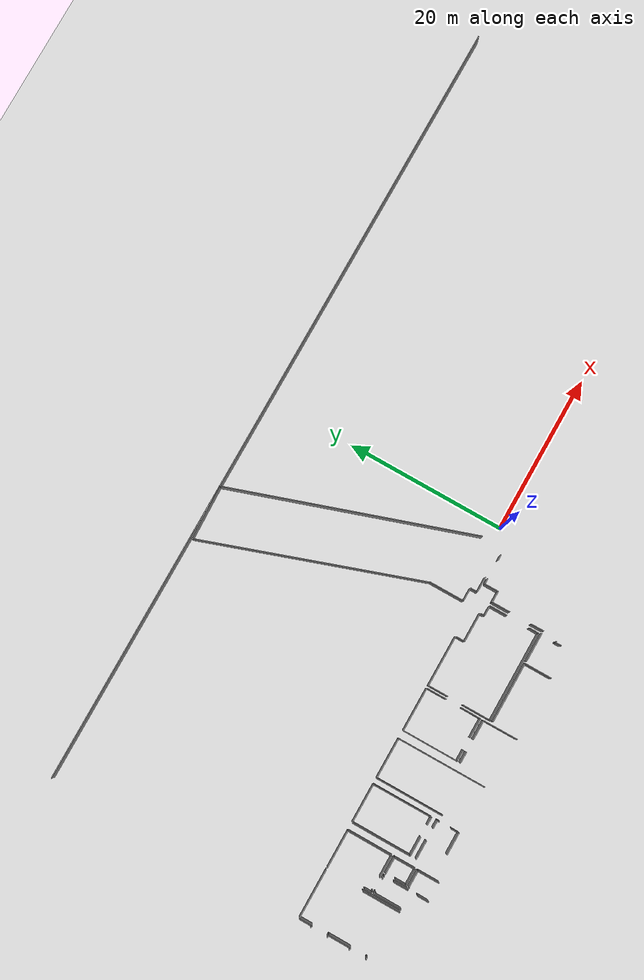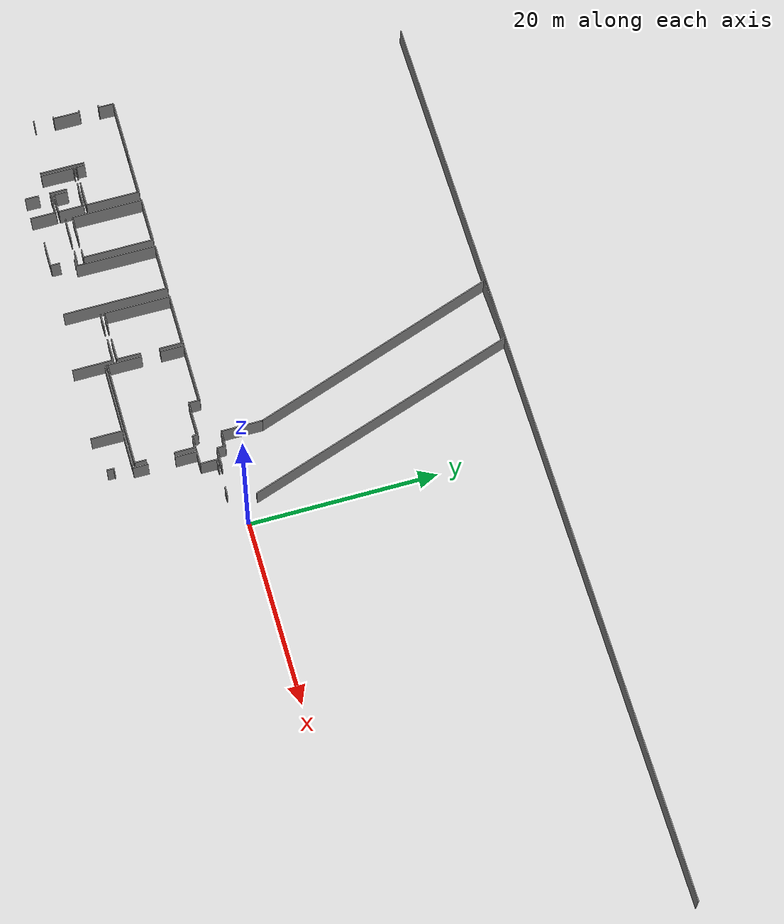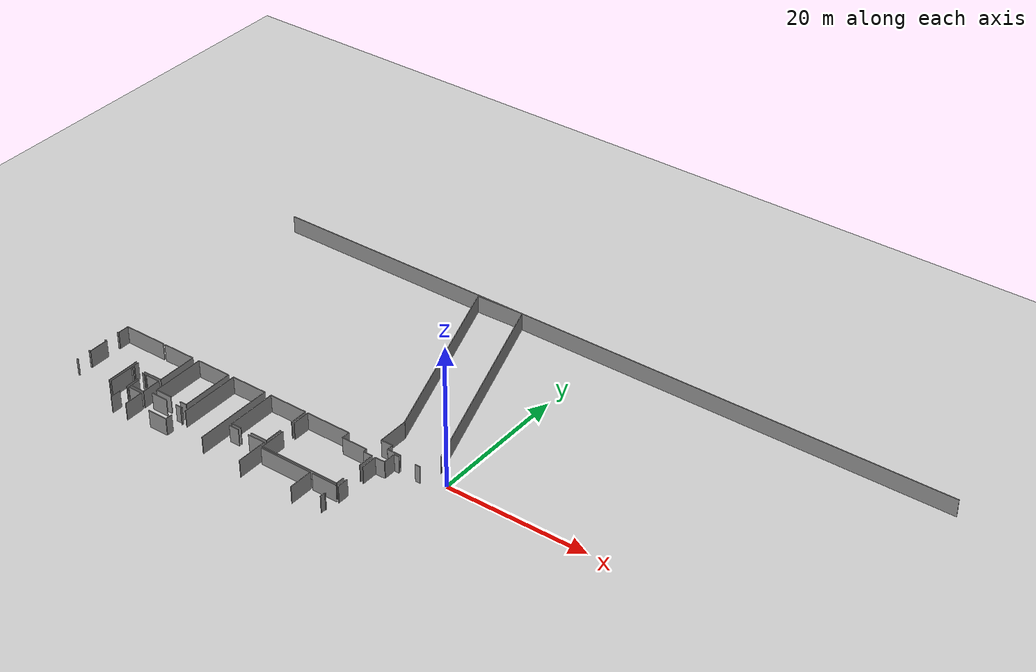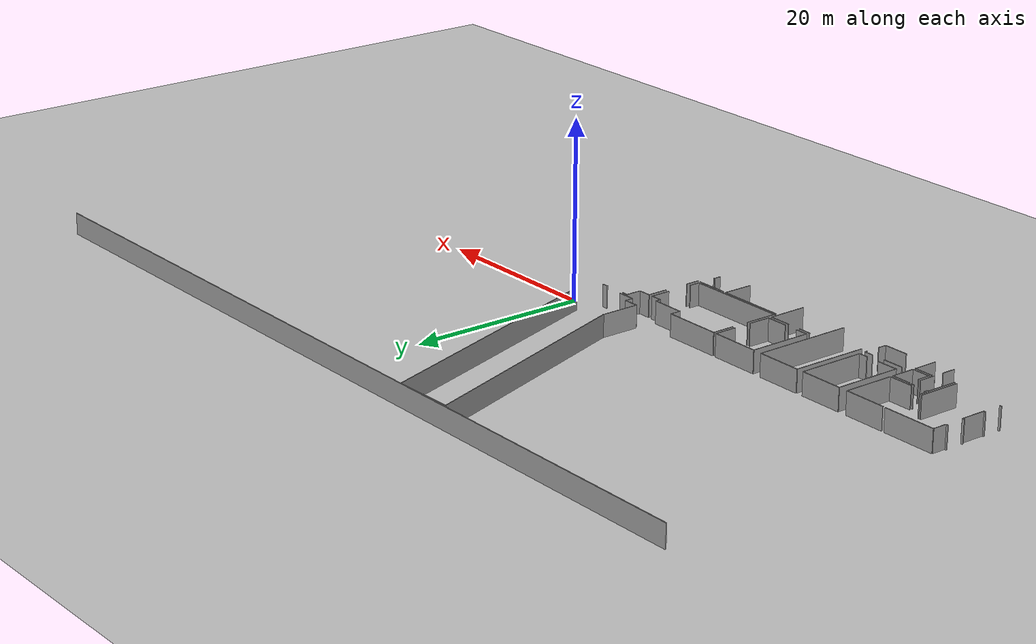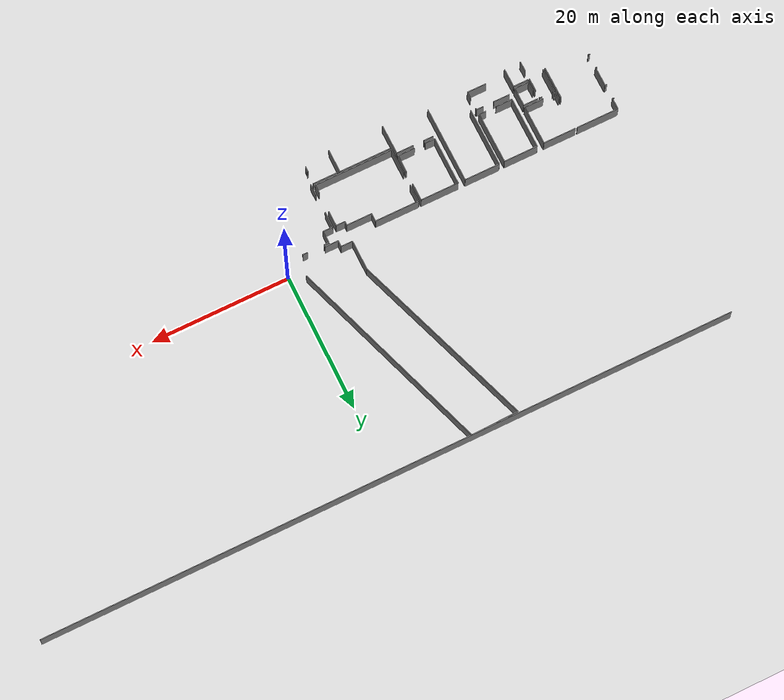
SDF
<sdf version="1.6">
 <world name="default">
  <model name="ground_plane">
   <static>1</static>
   <link name="link">
    <collision name="collision">
     <geometry><plane><normal>0 0 1</normal><size>100 100</size></plane></geometry>
     <surface><friction><ode><mu>100</mu><mu2>50</mu2></ode></friction></surface>
    </collision>
    <visual name="visual">
     <cast_shadows>0</cast_shadows>
     <geometry><plane><normal>0 0 1</normal><size>100 100</size></plane></geometry>
     <material>
      <script><uri>file://media/materials/scripts/gazebo.material</uri><name>Gazebo/Grey</name></script>
     </material>
    </visual>
   </link>
  </model>
  <model name="0510032260_A_40_1_102">
   <static>1</static>
   <link name="Wall_2">
    <collision name="Wall_2_Collision">
     <geometry><box><size>0.251178788783 0.1 2.5</size></box></geometry>
     <pose>0.125589394391 0 1.25 0 0 0</pose>
    </collision>
    <visual name="Wall_2_Visual">
     <pose>0.125589394391 0 1.25 0 0 0</pose>
     <geometry><box><size>0.251178788783 0.1 2.5</size></box></geometry>
     <material>
      <script><uri>file://media/materials/scripts/gazebo.material</uri><name>Gazebo/Grey</name></script>
      <ambient>1 1 1 1</ambient>
     </material>
    </visual>
    <pose>0.284813138973 -40.9323695717 0 0 0 3.14159265359</pose>
   </link>
   <link name="Wall_3">
    <collision name="Wall_3_Collision">
     <geometry><box><size>0.238486581163 0.1 2.5</size></box></geometry>
     <pose>0.119243290582 0 1.25 0 0 0</pose>
    </collision>
    <visual name="Wall_3_Visual">
     <pose>0.119243290582 0 1.25 0 0 0</pose>
     <geometry><box><size>0.238486581163 0.1 2.5</size></box></geometry>
     <material>
      <script><uri>file://media/materials/scripts/gazebo.material</uri><name>Gazebo/Grey</name></script>
      <ambient>1 1 1 1</ambient>
     </material>
    </visual>
    <pose>0.0336343501907 -38.808963237 0 0 0 0.0</pose>
   </link>
   <link name="Wall_4">
    <collision name="Wall_4_Collision">
     <geometry><box><size>2.84368911707 0.1 2.5</size></box></geometry>
     <pose>1.42184455853 0 1.25 0 0 0</pose>
    </collision>
    <visual name="Wall_4_Visual">
     <pose>1.42184455853 0 1.25 0 0 0</pose>
     <geometry><box><size>2.84368911707 0.1 2.5</size></box></geometry>
     <material>
      <script><uri>file://media/materials/scripts/gazebo.material</uri><name>Gazebo/Grey</name></script>
      <ambient>1 1 1 1</ambient>
     </material>
    </visual>
    <pose>0.272120931354 -38.808963237 0 0 0 1.57079632679</pose>
   </link>
   <link name="Wall_5">
    <collision name="Wall_5_Collision">
     <geometry><box><size>0.257651814668 0.1 2.5</size></box></geometry>
     <pose>0.128825907334 0 1.25 0 0 0</pose>
    </collision>
    <visual name="Wall_5_Visual">
     <pose>0.128825907334 0 1.25 0 0 0</pose>
     <geometry><box><size>0.257651814668 0.1 2.5</size></box></geometry>
     <material>
      <script><uri>file://media/materials/scripts/gazebo.material</uri><name>Gazebo/Grey</name></script>
      <ambient>1 1 1 1</ambient>
     </material>
    </visual>
    <pose>0.272120931354 -35.96527412 0 0 0 3.14159265359</pose>
   </link>
   <link name="Wall_6">
    <collision name="Wall_6_Collision">
     <geometry><box><size>0.248132658954 0.1 2.5</size></box></geometry>
     <pose>0.124066329477 0 1.25 0 0 0</pose>
    </collision>
    <visual name="Wall_6_Visual">
     <pose>0.124066329477 0 1.25 0 0 0</pose>
     <geometry><box><size>0.248132658954 0.1 2.5</size></box></geometry>
     <material>
      <script><uri>file://media/materials/scripts/gazebo.material</uri><name>Gazebo/Grey</name></script>
      <ambient>1 1 1 1</ambient>
     </material>
    </visual>
    <pose>0.0144691166858 -33.8371716685 0 0 0 0.0</pose>
   </link>
   <link name="Wall_7">
    <collision name="Wall_7_Collision">
     <geometry><box><size>1.63666017249 0.1 2.5</size></box></geometry>
     <pose>0.818330086244 0 1.25 0 0 0</pose>
    </collision>
    <visual name="Wall_7_Visual">
     <pose>0.818330086244 0 1.25 0 0 0</pose>
     <geometry><box><size>1.63666017249 0.1 2.5</size></box></geometry>
     <material>
      <script><uri>file://media/materials/scripts/gazebo.material</uri><name>Gazebo/Grey</name></script>
      <ambient>1 1 1 1</ambient>
     </material>
    </visual>
    <pose>0.26260177564 -33.8371716685 0 0 0 1.57079632679</pose>
   </link>
   <link name="Wall_8">
    <collision name="Wall_8_Collision">
     <geometry><box><size>6.15368994206 0.1 2.5</size></box></geometry>
     <pose>3.07684497103 0 1.25 0 0 0</pose>
    </collision>
    <visual name="Wall_8_Visual">
     <pose>3.07684497103 0 1.25 0 0 0</pose>
     <geometry><box><size>6.15368994206 0.1 2.5</size></box></geometry>
     <material>
      <script><uri>file://media/materials/scripts/gazebo.material</uri><name>Gazebo/Grey</name></script>
      <ambient>1 1 1 1</ambient>
     </material>
    </visual>
    <pose>0.26260177564 -32.200511496 0 0 0 0.0</pose>
   </link>
   <link name="Wall_9">
    <collision name="Wall_9_Collision">
     <geometry><box><size>4.78039307767 0.1 2.5</size></box></geometry>
     <pose>2.39019653883 0 1.25 0 0 0</pose>
    </collision>
    <visual name="Wall_9_Visual">
     <pose>2.39019653883 0 1.25 0 0 0</pose>
     <geometry><box><size>4.78039307767 0.1 2.5</size></box></geometry>
     <material>
      <script><uri>file://media/materials/scripts/gazebo.material</uri><name>Gazebo/Grey</name></script>
      <ambient>1 1 1 1</ambient>
     </material>
    </visual>
    <pose>6.4162917177 -36.9579316778 0 0 0 -1.57079632679</pose>
   </link>
   <link name="Wall_11">
    <collision name="Wall_11_Collision">
     <geometry><box><size>2.78124345558 0.1 2.5</size></box></geometry>
     <pose>1.39062172779 0 1.25 0 0 0</pose>
    </collision>
    <visual name="Wall_11_Visual">
     <pose>1.39062172779 0 1.25 0 0 0</pose>
     <geometry><box><size>2.78124345558 0.1 2.5</size></box></geometry>
     <material>
      <script><uri>file://media/materials/scripts/gazebo.material</uri><name>Gazebo/Grey</name></script>
      <ambient>1 1 1 1</ambient>
     </material>
    </visual>
    <pose>11.4279368182 -37.9172087297 0 0 0 3.14159265359</pose>
   </link>
   <link name="Wall_12">
    <collision name="Wall_12_Collision">
     <geometry><box><size>0.275420905335 0.1 2.5</size></box></geometry>
     <pose>0.137710452668 0 1.25 0 0 0</pose>
    </collision>
    <visual name="Wall_12_Visual">
     <pose>0.137710452668 0 1.25 0 0 0</pose>
     <geometry><box><size>0.275420905335 0.1 2.5</size></box></geometry>
     <material>
      <script><uri>file://media/materials/scripts/gazebo.material</uri><name>Gazebo/Grey</name></script>
      <ambient>1 1 1 1</ambient>
     </material>
    </visual>
    <pose>6.97132195688 -37.9172087297 0 0 0 3.14159265359</pose>
   </link>
   <link name="Wall_13">
    <collision name="Wall_13_Collision">
     <geometry><box><size>0.944173324787 0.1 2.5</size></box></geometry>
     <pose>0.472086662394 0 1.25 0 0 0</pose>
    </collision>
    <visual name="Wall_13_Visual">
     <pose>0.472086662394 0 1.25 0 0 0</pose>
     <geometry><box><size>0.944173324787 0.1 2.5</size></box></geometry>
     <material>
      <script><uri>file://media/materials/scripts/gazebo.material</uri><name>Gazebo/Grey</name></script>
      <ambient>1 1 1 1</ambient>
     </material>
    </visual>
    <pose>6.69590105155 -37.9172087297 0 0 0 1.57079632679</pose>
   </link>
   <link name="Wall_14">
    <collision name="Wall_14_Collision">
     <geometry><box><size>4.74015877952 0.1 2.5</size></box></geometry>
     <pose>2.37007938976 0 1.25 0 0 0</pose>
    </collision>
    <visual name="Wall_14_Visual">
     <pose>2.37007938976 0 1.25 0 0 0</pose>
     <geometry><box><size>4.74015877952 0.1 2.5</size></box></geometry>
     <material>
      <script><uri>file://media/materials/scripts/gazebo.material</uri><name>Gazebo/Grey</name></script>
      <ambient>1 1 1 1</ambient>
     </material>
    </visual>
    <pose>6.69590105155 -32.2078729764 0 0 0 0.0</pose>
   </link>
   <link name="Wall_15">
    <collision name="Wall_15_Collision">
     <geometry><box><size>5.70934153186 0.1 2.5</size></box></geometry>
     <pose>2.85467076593 0 1.25 0 0 0</pose>
    </collision>
    <visual name="Wall_15_Visual">
     <pose>2.85467076593 0 1.25 0 0 0</pose>
     <geometry><box><size>5.70934153186 0.1 2.5</size></box></geometry>
     <material>
      <script><uri>file://media/materials/scripts/gazebo.material</uri><name>Gazebo/Grey</name></script>
      <ambient>1 1 1 1</ambient>
     </material>
    </visual>
    <pose>11.4360598311 -32.2078729764 0 0 0 -1.57221908554</pose>
   </link>
   <link name="Wall_19">
    <collision name="Wall_19_Collision">
     <geometry><box><size>3.49771857568 0.1 2.5</size></box></geometry>
     <pose>1.74885928784 0 1.25 0 0 0</pose>
    </collision>
    <visual name="Wall_19_Visual">
     <pose>1.74885928784 0 1.25 0 0 0</pose>
     <geometry><box><size>3.49771857568 0.1 2.5</size></box></geometry>
     <material>
      <script><uri>file://media/materials/scripts/gazebo.material</uri><name>Gazebo/Grey</name></script>
      <ambient>1 1 1 1</ambient>
     </material>
    </visual>
    <pose>6.72623542776 -41.7286786777 0 0 0 1.57079632679</pose>
   </link>
   <link name="Wall_20">
    <collision name="Wall_20_Collision">
     <geometry><box><size>0.302328385488 0.1 2.5</size></box></geometry>
     <pose>0.151164192744 0 1.25 0 0 0</pose>
    </collision>
    <visual name="Wall_20_Visual">
     <pose>0.151164192744 0 1.25 0 0 0</pose>
     <geometry><box><size>0.302328385488 0.1 2.5</size></box></geometry>
     <material>
      <script><uri>file://media/materials/scripts/gazebo.material</uri><name>Gazebo/Grey</name></script>
      <ambient>1 1 1 1</ambient>
     </material>
    </visual>
    <pose>6.72623542776 -38.230960102 0 0 0 0.0</pose>
   </link>
   <link name="Wall_21">
    <collision name="Wall_21_Collision">
     <geometry><box><size>0.367185566421 0.1 2.5</size></box></geometry>
     <pose>0.183592783211 0 1.25 0 0 0</pose>
    </collision>
    <visual name="Wall_21_Visual">
     <pose>0.183592783211 0 1.25 0 0 0</pose>
     <geometry><box><size>0.367185566421 0.1 2.5</size></box></geometry>
     <material>
      <script><uri>file://media/materials/scripts/gazebo.material</uri><name>Gazebo/Grey</name></script>
      <ambient>1 1 1 1</ambient>
     </material>
    </visual>
    <pose>8.64872411583 -38.230960102 0 0 0 0.0</pose>
   </link>
   <link name="Wall_22">
    <collision name="Wall_22_Collision">
     <geometry><box><size>0.0856724014291 0.1 2.5</size></box></geometry>
     <pose>0.0428362007146 0 1.25 0 0 0</pose>
    </collision>
    <visual name="Wall_22_Visual">
     <pose>0.0428362007146 0 1.25 0 0 0</pose>
     <geometry><box><size>0.0856724014291 0.1 2.5</size></box></geometry>
     <material>
      <script><uri>file://media/materials/scripts/gazebo.material</uri><name>Gazebo/Grey</name></script>
      <ambient>1 1 1 1</ambient>
     </material>
    </visual>
    <pose>9.01590968225 -38.230960102 0 0 0 -1.57079632679</pose>
   </link>
   <link name="Wall_23">
    <collision name="Wall_23_Collision">
     <geometry><box><size>1.86803911738 0.1 2.5</size></box></geometry>
     <pose>0.934019558692 0 1.25 0 0 0</pose>
    </collision>
    <visual name="Wall_23_Visual">
     <pose>0.934019558692 0 1.25 0 0 0</pose>
     <geometry><box><size>1.86803911738 0.1 2.5</size></box></geometry>
     <material>
      <script><uri>file://media/materials/scripts/gazebo.material</uri><name>Gazebo/Grey</name></script>
      <ambient>1 1 1 1</ambient>
     </material>
    </visual>
    <pose>9.01590968225 -39.4925655394 0 0 0 -1.57079632679</pose>
   </link>
   <link name="Wall_24">
    <collision name="Wall_24_Collision">
     <geometry><box><size>1.48232655759 0.1 2.5</size></box></geometry>
     <pose>0.741163278797 0 1.25 0 0 0</pose>
    </collision>
    <visual name="Wall_24_Visual">
     <pose>0.741163278797 0 1.25 0 0 0</pose>
     <geometry><box><size>1.48232655759 0.1 2.5</size></box></geometry>
     <material>
      <script><uri>file://media/materials/scripts/gazebo.material</uri><name>Gazebo/Grey</name></script>
      <ambient>1 1 1 1</ambient>
     </material>
    </visual>
    <pose>9.01590968225 -42.5394569004 0 0 0 -1.58406836815</pose>
   </link>
   <link name="Wall_25">
    <collision name="Wall_25_Collision">
     <geometry><box><size>2.09497578961 0.1 2.5</size></box></geometry>
     <pose>1.04748789481 0 1.25 0 0 0</pose>
    </collision>
    <visual name="Wall_25_Visual">
     <pose>1.04748789481 0 1.25 0 0 0</pose>
     <geometry><box><size>2.09497578961 0.1 2.5</size></box></geometry>
     <material>
      <script><uri>file://media/materials/scripts/gazebo.material</uri><name>Gazebo/Grey</name></script>
      <ambient>1 1 1 1</ambient>
     </material>
    </visual>
    <pose>11.4215907144 -40.9482348312 0 0 0 3.14159265359</pose>
   </link>
   <link name="Wall_26">
    <collision name="Wall_26_Collision">
     <geometry><box><size>1.42584260393 0.1 2.5</size></box></geometry>
     <pose>0.712921301967 0 1.25 0 0 0</pose>
    </collision>
    <visual name="Wall_26_Visual">
     <pose>0.712921301967 0 1.25 0 0 0</pose>
     <geometry><box><size>1.42584260393 0.1 2.5</size></box></geometry>
     <material>
      <script><uri>file://media/materials/scripts/gazebo.material</uri><name>Gazebo/Grey</name></script>
      <ambient>1 1 1 1</ambient>
     </material>
    </visual>
    <pose>9.32661492477 -40.9482348312 0 0 0 1.57079632679</pose>
   </link>
   <link name="Wall_27">
    <collision name="Wall_27_Collision">
     <geometry><box><size>0.0767878560958 0.1 2.5</size></box></geometry>
     <pose>0.0383939280479 0 1.25 0 0 0</pose>
    </collision>
    <visual name="Wall_27_Visual">
     <pose>0.0383939280479 0 1.25 0 0 0</pose>
     <geometry><box><size>0.0767878560958 0.1 2.5</size></box></geometry>
     <material>
      <script><uri>file://media/materials/scripts/gazebo.material</uri><name>Gazebo/Grey</name></script>
      <ambient>1 1 1 1</ambient>
     </material>
    </visual>
    <pose>9.32661492477 -38.3297054773 0 0 0 1.57079632679</pose>
   </link>
   <link name="Wall_28">
    <collision name="Wall_28_Collision">
     <geometry><box><size>2.09167581563 0.1 2.5</size></box></geometry>
     <pose>1.04583790782 0 1.25 0 0 0</pose>
    </collision>
    <visual name="Wall_28_Visual">
     <pose>1.04583790782 0 1.25 0 0 0</pose>
     <geometry><box><size>2.09167581563 0.1 2.5</size></box></geometry>
     <material>
      <script><uri>file://media/materials/scripts/gazebo.material</uri><name>Gazebo/Grey</name></script>
      <ambient>1 1 1 1</ambient>
     </material>
    </visual>
    <pose>9.32661492477 -38.2529176212 0 0 0 0.0</pose>
   </link>
   <link name="Wall_29">
    <collision name="Wall_29_Collision">
     <geometry><box><size>2.69531923014 0.1 2.5</size></box></geometry>
     <pose>1.34765961507 0 1.25 0 0 0</pose>
    </collision>
    <visual name="Wall_29_Visual">
     <pose>1.34765961507 0 1.25 0 0 0</pose>
     <geometry><box><size>2.69531923014 0.1 2.5</size></box></geometry>
     <material>
      <script><uri>file://media/materials/scripts/gazebo.material</uri><name>Gazebo/Grey</name></script>
      <ambient>1 1 1 1</ambient>
     </material>
    </visual>
    <pose>11.4182907404 -38.2529176212 0 0 0 -1.56957199137</pose>
   </link>
   <link name="Wall_32">
    <collision name="Wall_32_Collision">
     <geometry><box><size>0.0798339859243 0.1 2.5</size></box></geometry>
     <pose>0.0399169929622 0 1.25 0 0 0</pose>
    </collision>
    <visual name="Wall_32_Visual">
     <pose>0.0399169929622 0 1.25 0 0 0</pose>
     <geometry><box><size>0.0798339859243 0.1 2.5</size></box></geometry>
     <material>
      <script><uri>file://media/materials/scripts/gazebo.material</uri><name>Gazebo/Grey</name></script>
      <ambient>1 1 1 1</ambient>
     </material>
    </visual>
    <pose>9.32902644421 -41.3583200594 0 0 0 1.57079632679</pose>
   </link>
   <link name="Wall_33">
    <collision name="Wall_33_Collision">
     <geometry><box><size>2.09104120525 0.1 2.5</size></box></geometry>
     <pose>1.04552060263 0 1.25 0 0 0</pose>
    </collision>
    <visual name="Wall_33_Visual">
     <pose>1.04552060263 0 1.25 0 0 0</pose>
     <geometry><box><size>2.09104120525 0.1 2.5</size></box></geometry>
     <material>
      <script><uri>file://media/materials/scripts/gazebo.material</uri><name>Gazebo/Grey</name></script>
      <ambient>1 1 1 1</ambient>
     </material>
    </visual>
    <pose>9.32902644421 -41.2784860735 0 0 0 0.0</pose>
   </link>
   <link name="Wall_34">
    <collision name="Wall_34_Collision">
     <geometry><box><size>2.71931046153 0.1 2.5</size></box></geometry>
     <pose>1.35965523077 0 1.25 0 0 0</pose>
    </collision>
    <visual name="Wall_34_Visual">
     <pose>1.35965523077 0 1.25 0 0 0</pose>
     <geometry><box><size>2.71931046153 0.1 2.5</size></box></geometry>
     <material>
      <script><uri>file://media/materials/scripts/gazebo.material</uri><name>Gazebo/Grey</name></script>
      <ambient>1 1 1 1</ambient>
     </material>
    </visual>
    <pose>11.4200676495 -41.2784860735 0 0 0 -1.56888267686</pose>
   </link>
   <link name="Wall_118">
    <collision name="Wall_118_Collision">
     <geometry><box><size>2.78124345558 0.1 2.5</size></box></geometry>
     <pose>1.39062172779 0 1.25 0 0 0</pose>
    </collision>
    <visual name="Wall_118_Visual">
     <pose>1.39062172779 0 1.25 0 0 0</pose>
     <geometry><box><size>2.78124345558 0.1 2.5</size></box></geometry>
     <material>
      <script><uri>file://media/materials/scripts/gazebo.material</uri><name>Gazebo/Grey</name></script>
      <ambient>1 1 1 1</ambient>
     </material>
    </visual>
    <pose>17.3766476072 -43.270020371 0 0 0 3.14159265359</pose>
   </link>
   <link name="Wall_121">
    <collision name="Wall_121_Collision">
     <geometry><box><size>2.36366982491 0.1 2.5</size></box></geometry>
     <pose>1.18183491246 0 1.25 0 0 0</pose>
    </collision>
    <visual name="Wall_121_Visual">
     <pose>1.18183491246 0 1.25 0 0 0</pose>
     <geometry><box><size>2.36366982491 0.1 2.5</size></box></geometry>
     <material>
      <script><uri>file://media/materials/scripts/gazebo.material</uri><name>Gazebo/Grey</name></script>
      <ambient>1 1 1 1</ambient>
     </material>
    </visual>
    <pose>12.4605748301 -40.478115461 0 0 0 0.0</pose>
   </link>
   <link name="Wall_122">
    <collision name="Wall_122_Collision">
     <geometry><box><size>1.01537660953 0.1 2.5</size></box></geometry>
     <pose>0.507688304765 0 1.25 0 0 0</pose>
    </collision>
    <visual name="Wall_122_Visual">
     <pose>0.507688304765 0 1.25 0 0 0</pose>
     <geometry><box><size>1.01537660953 0.1 2.5</size></box></geometry>
     <material>
      <script><uri>file://media/materials/scripts/gazebo.material</uri><name>Gazebo/Grey</name></script>
      <ambient>1 1 1 1</ambient>
     </material>
    </visual>
    <pose>16.3833554389 -40.478115461 0 0 0 0.0</pose>
   </link>
   <link name="Wall_123">
    <collision name="Wall_123_Collision">
     <geometry><box><size>0.264505606783 0.1 2.5</size></box></geometry>
     <pose>0.132252803391 0 1.25 0 0 0</pose>
    </collision>
    <visual name="Wall_123_Visual">
     <pose>0.132252803391 0 1.25 0 0 0</pose>
     <geometry><box><size>0.264505606783 0.1 2.5</size></box></geometry>
     <material>
      <script><uri>file://media/materials/scripts/gazebo.material</uri><name>Gazebo/Grey</name></script>
      <ambient>1 1 1 1</ambient>
     </material>
    </visual>
    <pose>17.3987320485 -40.478115461 0 0 0 -1.57079632679</pose>
   </link>
   <link name="Wall_124">
    <collision name="Wall_124_Collision">
     <geometry><box><size>0.975392356944 0.1 2.5</size></box></geometry>
     <pose>0.487696178472 0 1.25 0 0 0</pose>
    </collision>
    <visual name="Wall_124_Visual">
     <pose>0.487696178472 0 1.25 0 0 0</pose>
     <geometry><box><size>0.975392356944 0.1 2.5</size></box></geometry>
     <material>
      <script><uri>file://media/materials/scripts/gazebo.material</uri><name>Gazebo/Grey</name></script>
      <ambient>1 1 1 1</ambient>
     </material>
    </visual>
    <pose>17.3987320485 -42.2948780596 0 0 0 -1.59343985936</pose>
   </link>
   <link name="Wall_125">
    <collision name="Wall_125_Collision">
     <geometry><box><size>1.00001903831 0.1 2.5</size></box></geometry>
     <pose>0.500009519156 0 1.25 0 0 0</pose>
    </collision>
    <visual name="Wall_125_Visual">
     <pose>0.500009519156 0 1.25 0 0 0</pose>
     <geometry><box><size>1.00001903831 0.1 2.5</size></box></geometry>
     <material>
      <script><uri>file://media/materials/scripts/gazebo.material</uri><name>Gazebo/Grey</name></script>
      <ambient>1 1 1 1</ambient>
     </material>
    </visual>
    <pose>17.3955589966 -39.720136822 0 0 0 3.14159265359</pose>
   </link>
   <link name="Wall_126">
    <collision name="Wall_126_Collision">
     <geometry><box><size>2.38968885053 0.1 2.5</size></box></geometry>
     <pose>1.19484442527 0 1.25 0 0 0</pose>
    </collision>
    <visual name="Wall_126_Visual">
     <pose>1.19484442527 0 1.25 0 0 0</pose>
     <geometry><box><size>2.38968885053 0.1 2.5</size></box></geometry>
     <material>
      <script><uri>file://media/materials/scripts/gazebo.material</uri><name>Gazebo/Grey</name></script>
      <ambient>1 1 1 1</ambient>
     </material>
    </visual>
    <pose>14.8521675118 -39.720136822 0 0 0 3.14159265359</pose>
   </link>
   <link name="Wall_127">
    <collision name="Wall_127_Collision">
     <geometry><box><size>7.52889063759 0.1 2.5</size></box></geometry>
     <pose>3.7644453188 0 1.25 0 0 0</pose>
    </collision>
    <visual name="Wall_127_Visual">
     <pose>3.7644453188 0 1.25 0 0 0</pose>
     <geometry><box><size>7.52889063759 0.1 2.5</size></box></geometry>
     <material>
      <script><uri>file://media/materials/scripts/gazebo.material</uri><name>Gazebo/Grey</name></script>
      <ambient>1 1 1 1</ambient>
     </material>
    </visual>
    <pose>12.4624786612 -39.720136822 0 0 0 1.57079632679</pose>
   </link>
   <link name="Wall_128">
    <collision name="Wall_128_Collision">
     <geometry><box><size>4.91543816674 0.1 2.5</size></box></geometry>
     <pose>2.45771908337 0 1.25 0 0 0</pose>
    </collision>
    <visual name="Wall_128_Visual">
     <pose>2.45771908337 0 1.25 0 0 0</pose>
     <geometry><box><size>4.91543816674 0.1 2.5</size></box></geometry>
     <material>
      <script><uri>file://media/materials/scripts/gazebo.material</uri><name>Gazebo/Grey</name></script>
      <ambient>1 1 1 1</ambient>
     </material>
    </visual>
    <pose>12.4624786612 -32.1912461844 0 0 0 0.0</pose>
   </link>
   <link name="Wall_129">
    <collision name="Wall_129_Collision">
     <geometry><box><size>7.52891130768 0.1 2.5</size></box></geometry>
     <pose>3.76445565384 0 1.25 0 0 0</pose>
    </collision>
    <visual name="Wall_129_Visual">
     <pose>3.76445565384 0 1.25 0 0 0</pose>
     <geometry><box><size>7.52891130768 0.1 2.5</size></box></geometry>
     <material>
      <script><uri>file://media/materials/scripts/gazebo.material</uri><name>Gazebo/Grey</name></script>
      <ambient>1 1 1 1</ambient>
     </material>
    </visual>
    <pose>17.377916828 -32.1912461844 0 0 0 -1.56845306839</pose>
   </link>
   <link name="Wall_132">
    <collision name="Wall_132_Collision">
     <geometry><box><size>8.57980542846 0.1 2.5</size></box></geometry>
     <pose>4.28990271423 0 1.25 0 0 0</pose>
    </collision>
    <visual name="Wall_132_Visual">
     <pose>4.28990271423 0 1.25 0 0 0</pose>
     <geometry><box><size>8.57980542846 0.1 2.5</size></box></geometry>
     <material>
      <script><uri>file://media/materials/scripts/gazebo.material</uri><name>Gazebo/Grey</name></script>
      <ambient>1 1 1 1</ambient>
     </material>
    </visual>
    <pose>18.1724490249 -40.7497287041 0 0 0 1.57079632679</pose>
   </link>
   <link name="Wall_133">
    <collision name="Wall_133_Collision">
     <geometry><box><size>5.1059482031 0.1 2.5</size></box></geometry>
     <pose>2.55297410155 0 1.25 0 0 0</pose>
    </collision>
    <visual name="Wall_133_Visual">
     <pose>2.55297410155 0 1.25 0 0 0</pose>
     <geometry><box><size>5.1059482031 0.1 2.5</size></box></geometry>
     <material>
      <script><uri>file://media/materials/scripts/gazebo.material</uri><name>Gazebo/Grey</name></script>
      <ambient>1 1 1 1</ambient>
     </material>
    </visual>
    <pose>18.1724490249 -32.1699232756 0 0 0 0.0</pose>
   </link>
   <link name="Wall_134">
    <collision name="Wall_134_Collision">
     <geometry><box><size>11.1758989829 0.1 2.5</size></box></geometry>
     <pose>5.58794949143 0 1.25 0 0 0</pose>
    </collision>
    <visual name="Wall_134_Visual">
     <pose>5.58794949143 0 1.25 0 0 0</pose>
     <geometry><box><size>11.1758989829 0.1 2.5</size></box></geometry>
     <material>
      <script><uri>file://media/materials/scripts/gazebo.material</uri><name>Gazebo/Grey</name></script>
      <ambient>1 1 1 1</ambient>
     </material>
    </visual>
    <pose>23.278397228 -32.1699232756 0 0 0 -1.56850225793</pose>
   </link>
   <link name="Wall_177">
    <collision name="Wall_177_Collision">
     <geometry><box><size>1.44754627896 0.1 2.5</size></box></geometry>
     <pose>0.723773139481 0 1.25 0 0 0</pose>
    </collision>
    <visual name="Wall_177_Visual">
     <pose>0.723773139481 0 1.25 0 0 0</pose>
     <geometry><box><size>1.44754627896 0.1 2.5</size></box></geometry>
     <material>
      <script><uri>file://media/materials/scripts/gazebo.material</uri><name>Gazebo/Grey</name></script>
      <ambient>1 1 1 1</ambient>
     </material>
    </visual>
    <pose>24.302785305 -39.6282452388 0 0 0 0.0</pose>
   </link>
   <link name="Wall_178">
    <collision name="Wall_178_Collision">
     <geometry><box><size>2.46114597943 0.1 2.5</size></box></geometry>
     <pose>1.23057298971 0 1.25 0 0 0</pose>
    </collision>
    <visual name="Wall_178_Visual">
     <pose>1.23057298971 0 1.25 0 0 0</pose>
     <geometry><box><size>2.46114597943 0.1 2.5</size></box></geometry>
     <material>
      <script><uri>file://media/materials/scripts/gazebo.material</uri><name>Gazebo/Grey</name></script>
      <ambient>1 1 1 1</ambient>
     </material>
    </visual>
    <pose>27.3428228739 -39.6282452388 0 0 0 0.0</pose>
   </link>
   <link name="Wall_179">
    <collision name="Wall_179_Collision">
     <geometry><box><size>4.34965956635 0.1 2.5</size></box></geometry>
     <pose>2.17482978317 0 1.25 0 0 0</pose>
    </collision>
    <visual name="Wall_179_Visual">
     <pose>2.17482978317 0 1.25 0 0 0</pose>
     <geometry><box><size>4.34965956635 0.1 2.5</size></box></geometry>
     <material>
      <script><uri>file://media/materials/scripts/gazebo.material</uri><name>Gazebo/Grey</name></script>
      <ambient>1 1 1 1</ambient>
     </material>
    </visual>
    <pose>29.8039688533 -39.6282452388 0 0 0 -1.5665068871</pose>
   </link>
   <link name="Wall_185">
    <collision name="Wall_185_Collision">
     <geometry><box><size>7.59425550683 0.1 2.5</size></box></geometry>
     <pose>3.79712775342 0 1.25 0 0 0</pose>
    </collision>
    <visual name="Wall_185_Visual">
     <pose>3.79712775342 0 1.25 0 0 0</pose>
     <geometry><box><size>7.59425550683 0.1 2.5</size></box></geometry>
     <material>
      <script><uri>file://media/materials/scripts/gazebo.material</uri><name>Gazebo/Grey</name></script>
      <ambient>1 1 1 1</ambient>
     </material>
    </visual>
    <pose>30.2214155619 -40.6116374852 0 0 0 0.0</pose>
   </link>
   <link name="Wall_186">
    <collision name="Wall_186_Collision">
     <geometry><box><size>3.41002979168 0.1 2.5</size></box></geometry>
     <pose>1.70501489584 0 1.25 0 0 0</pose>
    </collision>
    <visual name="Wall_186_Visual">
     <pose>1.70501489584 0 1.25 0 0 0</pose>
     <geometry><box><size>3.41002979168 0.1 2.5</size></box></geometry>
     <material>
      <script><uri>file://media/materials/scripts/gazebo.material</uri><name>Gazebo/Grey</name></script>
      <ambient>1 1 1 1</ambient>
     </material>
    </visual>
    <pose>37.8156710687 -40.6116374852 0 0 0 -1.57369950843</pose>
   </link>
   <link name="Wall_187">
    <collision name="Wall_187_Collision">
     <geometry><box><size>2.44312304461 0.1 2.5</size></box></geometry>
     <pose>1.2215615223 0 1.25 0 0 0</pose>
    </collision>
    <visual name="Wall_187_Visual">
     <pose>1.2215615223 0 1.25 0 0 0</pose>
     <geometry><box><size>2.44312304461 0.1 2.5</size></box></geometry>
     <material>
      <script><uri>file://media/materials/scripts/gazebo.material</uri><name>Gazebo/Grey</name></script>
      <ambient>1 1 1 1</ambient>
     </material>
    </visual>
    <pose>29.8080303598 -39.2195561535 0 0 0 3.14159265359</pose>
   </link>
   <link name="Wall_188">
    <collision name="Wall_188_Collision">
     <geometry><box><size>1.43967711024 0.1 2.5</size></box></geometry>
     <pose>0.719838555119 0 1.25 0 0 0</pose>
    </collision>
    <visual name="Wall_188_Visual">
     <pose>0.719838555119 0 1.25 0 0 0</pose>
     <geometry><box><size>1.43967711024 0.1 2.5</size></box></geometry>
     <material>
      <script><uri>file://media/materials/scripts/gazebo.material</uri><name>Gazebo/Grey</name></script>
      <ambient>1 1 1 1</ambient>
     </material>
    </visual>
    <pose>25.7641660902 -39.2195561535 0 0 0 3.14159265359</pose>
   </link>
   <link name="Wall_189">
    <collision name="Wall_189_Collision">
     <geometry><box><size>7.0208215666 0.1 2.5</size></box></geometry>
     <pose>3.5104107833 0 1.25 0 0 0</pose>
    </collision>
    <visual name="Wall_189_Visual">
     <pose>3.5104107833 0 1.25 0 0 0</pose>
     <geometry><box><size>7.0208215666 0.1 2.5</size></box></geometry>
     <material>
      <script><uri>file://media/materials/scripts/gazebo.material</uri><name>Gazebo/Grey</name></script>
      <ambient>1 1 1 1</ambient>
     </material>
    </visual>
    <pose>24.32448898 -39.2195561535 0 0 0 1.57079632679</pose>
   </link>
   <link name="Wall_190">
    <collision name="Wall_190_Collision">
     <geometry><box><size>5.50879887293 0.1 2.5</size></box></geometry>
     <pose>2.75439943647 0 1.25 0 0 0</pose>
    </collision>
    <visual name="Wall_190_Visual">
     <pose>2.75439943647 0 1.25 0 0 0</pose>
     <geometry><box><size>5.50879887293 0.1 2.5</size></box></geometry>
     <material>
      <script><uri>file://media/materials/scripts/gazebo.material</uri><name>Gazebo/Grey</name></script>
      <ambient>1 1 1 1</ambient>
     </material>
    </visual>
    <pose>24.32448898 -32.1987345869 0 0 0 0.0</pose>
   </link>
   <link name="Wall_191">
    <collision name="Wall_191_Collision">
     <geometry><box><size>2.54326456272 0.1 2.5</size></box></geometry>
     <pose>1.27163228136 0 1.25 0 0 0</pose>
    </collision>
    <visual name="Wall_191_Visual">
     <pose>1.27163228136 0 1.25 0 0 0</pose>
     <geometry><box><size>2.54326456272 0.1 2.5</size></box></geometry>
     <material>
      <script><uri>file://media/materials/scripts/gazebo.material</uri><name>Gazebo/Grey</name></script>
      <ambient>1 1 1 1</ambient>
     </material>
    </visual>
    <pose>29.8332878529 -32.1987345869 0 0 0 -1.57079632679</pose>
   </link>
   <link name="Wall_192">
    <collision name="Wall_192_Collision">
     <geometry><box><size>2.51369169333 0.1 2.5</size></box></geometry>
     <pose>1.25684584667 0 1.25 0 0 0</pose>
    </collision>
    <visual name="Wall_192_Visual">
     <pose>1.25684584667 0 1.25 0 0 0</pose>
     <geometry><box><size>2.51369169333 0.1 2.5</size></box></geometry>
     <material>
      <script><uri>file://media/materials/scripts/gazebo.material</uri><name>Gazebo/Grey</name></script>
      <ambient>1 1 1 1</ambient>
     </material>
    </visual>
    <pose>29.8332878529 -36.7059913566 0 0 0 -1.58084446367</pose>
   </link>
   <link name="Wall_193">
    <collision name="Wall_193_Collision">
     <geometry><box><size>11.4081369743 0.1 2.5</size></box></geometry>
     <pose>5.70406848715 0 1.25 0 0 0</pose>
    </collision>
    <visual name="Wall_193_Visual">
     <pose>5.70406848715 0 1.25 0 0 0</pose>
     <geometry><box><size>11.4081369743 0.1 2.5</size></box></geometry>
     <material>
      <script><uri>file://media/materials/scripts/gazebo.material</uri><name>Gazebo/Grey</name></script>
      <ambient>1 1 1 1</ambient>
     </material>
    </visual>
    <pose>41.6001066145 -40.3412934629 0 0 0 3.14159265359</pose>
   </link>
   <link name="Wall_194">
    <collision name="Wall_194_Collision">
     <geometry><box><size>3.61829454806 0.1 2.5</size></box></geometry>
     <pose>1.80914727403 0 1.25 0 0 0</pose>
    </collision>
    <visual name="Wall_194_Visual">
     <pose>1.80914727403 0 1.25 0 0 0</pose>
     <geometry><box><size>3.61829454806 0.1 2.5</size></box></geometry>
     <material>
      <script><uri>file://media/materials/scripts/gazebo.material</uri><name>Gazebo/Grey</name></script>
      <ambient>1 1 1 1</ambient>
     </material>
    </visual>
    <pose>30.1919696402 -40.3412934629 0 0 0 1.57079632679</pose>
   </link>
   <link name="Wall_195">
    <collision name="Wall_195_Collision">
     <geometry><box><size>2.51635708257 0.1 2.5</size></box></geometry>
     <pose>1.25817854128 0 1.25 0 0 0</pose>
    </collision>
    <visual name="Wall_195_Visual">
     <pose>1.25817854128 0 1.25 0 0 0</pose>
     <geometry><box><size>2.51635708257 0.1 2.5</size></box></geometry>
     <material>
      <script><uri>file://media/materials/scripts/gazebo.material</uri><name>Gazebo/Grey</name></script>
      <ambient>1 1 1 1</ambient>
     </material>
    </visual>
    <pose>30.1919696402 -34.7275300329 0 0 0 1.57079632679</pose>
   </link>
   <link name="Wall_196">
    <collision name="Wall_196_Collision">
     <geometry><box><size>6.43025314608 0.1 2.5</size></box></geometry>
     <pose>3.21512657304 0 1.25 0 0 0</pose>
    </collision>
    <visual name="Wall_196_Visual">
     <pose>3.21512657304 0 1.25 0 0 0</pose>
     <geometry><box><size>6.43025314608 0.1 2.5</size></box></geometry>
     <material>
      <script><uri>file://media/materials/scripts/gazebo.material</uri><name>Gazebo/Grey</name></script>
      <ambient>1 1 1 1</ambient>
     </material>
    </visual>
    <pose>30.1919696402 -32.2111729504 0 0 0 0.0</pose>
   </link>
   <link name="Wall_197">
    <collision name="Wall_197_Collision">
     <geometry><box><size>1.16501773736 0.1 2.5</size></box></geometry>
     <pose>0.58250886868 0 1.25 0 0 0</pose>
    </collision>
    <visual name="Wall_197_Visual">
     <pose>0.58250886868 0 1.25 0 0 0</pose>
     <geometry><box><size>1.16501773736 0.1 2.5</size></box></geometry>
     <material>
      <script><uri>file://media/materials/scripts/gazebo.material</uri><name>Gazebo/Grey</name></script>
      <ambient>1 1 1 1</ambient>
     </material>
    </visual>
    <pose>36.6222227863 -32.2111729504 0 0 0 -1.57079632679</pose>
   </link>
   <link name="Wall_198">
    <collision name="Wall_198_Collision">
     <geometry><box><size>3.68860937827 0.1 2.5</size></box></geometry>
     <pose>1.84430468914 0 1.25 0 0 0</pose>
    </collision>
    <visual name="Wall_198_Visual">
     <pose>1.84430468914 0 1.25 0 0 0</pose>
     <geometry><box><size>3.68860937827 0.1 2.5</size></box></geometry>
     <material>
      <script><uri>file://media/materials/scripts/gazebo.material</uri><name>Gazebo/Grey</name></script>
      <ambient>1 1 1 1</ambient>
     </material>
    </visual>
    <pose>36.6222227863 -33.3761906877 0 0 0 0.0</pose>
   </link>
   <link name="Wall_199">
    <collision name="Wall_199_Collision">
     <geometry><box><size>0.57584545968 0.1 2.5</size></box></geometry>
     <pose>0.28792272984 0 1.25 0 0 0</pose>
    </collision>
    <visual name="Wall_199_Visual">
     <pose>0.28792272984 0 1.25 0 0 0</pose>
     <geometry><box><size>0.57584545968 0.1 2.5</size></box></geometry>
     <material>
      <script><uri>file://media/materials/scripts/gazebo.material</uri><name>Gazebo/Grey</name></script>
      <ambient>1 1 1 1</ambient>
     </material>
    </visual>
    <pose>40.3108321646 -33.3761906877 0 0 0 -1.57079632679</pose>
   </link>
   <link name="Wall_200">
    <collision name="Wall_200_Collision">
     <geometry><box><size>1.30196665757 0.1 2.5</size></box></geometry>
     <pose>0.650983328785 0 1.25 0 0 0</pose>
    </collision>
    <visual name="Wall_200_Visual">
     <pose>0.650983328785 0 1.25 0 0 0</pose>
     <geometry><box><size>1.30196665757 0.1 2.5</size></box></geometry>
     <material>
      <script><uri>file://media/materials/scripts/gazebo.material</uri><name>Gazebo/Grey</name></script>
      <ambient>1 1 1 1</ambient>
     </material>
    </visual>
    <pose>40.3108321646 -33.9520361474 0 0 0 0.0</pose>
   </link>
   <link name="Wall_201">
    <collision name="Wall_201_Collision">
     <geometry><box><size>2.24867842388 0.1 2.5</size></box></geometry>
     <pose>1.12433921194 0 1.25 0 0 0</pose>
    </collision>
    <visual name="Wall_201_Visual">
     <pose>1.12433921194 0 1.25 0 0 0</pose>
     <geometry><box><size>2.24867842388 0.1 2.5</size></box></geometry>
     <material>
      <script><uri>file://media/materials/scripts/gazebo.material</uri><name>Gazebo/Grey</name></script>
      <ambient>1 1 1 1</ambient>
     </material>
    </visual>
    <pose>41.6127988222 -33.9520361474 0 0 0 -1.57079632679</pose>
   </link>
   <link name="Wall_202">
    <collision name="Wall_202_Collision">
     <geometry><box><size>1.20684184347 0.1 2.5</size></box></geometry>
     <pose>0.603420921734 0 1.25 0 0 0</pose>
    </collision>
    <visual name="Wall_202_Visual">
     <pose>0.603420921734 0 1.25 0 0 0</pose>
     <geometry><box><size>1.20684184347 0.1 2.5</size></box></geometry>
     <material>
      <script><uri>file://media/materials/scripts/gazebo.material</uri><name>Gazebo/Grey</name></script>
      <ambient>1 1 1 1</ambient>
     </material>
    </visual>
    <pose>41.6127988222 -39.1345183625 0 0 0 -1.581313398</pose>
   </link>
   <link name="Wall_209">
    <collision name="Wall_209_Collision">
     <geometry><box><size>1.62244489995 0.1 2.5</size></box></geometry>
     <pose>0.811222449977 0 1.25 0 0 0</pose>
    </collision>
    <visual name="Wall_209_Visual">
     <pose>0.811222449977 0 1.25 0 0 0</pose>
     <geometry><box><size>1.62244489995 0.1 2.5</size></box></geometry>
     <material>
      <script><uri>file://media/materials/scripts/gazebo.material</uri><name>Gazebo/Grey</name></script>
      <ambient>1 1 1 1</ambient>
     </material>
    </visual>
    <pose>42.1080487635 -40.6984521853 0 0 0 1.57079632679</pose>
   </link>
   <link name="Wall_210">
    <collision name="Wall_210_Collision">
     <geometry><box><size>2.3066818127 0.1 2.5</size></box></geometry>
     <pose>1.15334090635 0 1.25 0 0 0</pose>
    </collision>
    <visual name="Wall_210_Visual">
     <pose>1.15334090635 0 1.25 0 0 0</pose>
     <geometry><box><size>2.3066818127 0.1 2.5</size></box></geometry>
     <material>
      <script><uri>file://media/materials/scripts/gazebo.material</uri><name>Gazebo/Grey</name></script>
      <ambient>1 1 1 1</ambient>
     </material>
    </visual>
    <pose>42.1080487635 -36.2726793885 0 0 0 1.57079632679</pose>
   </link>
   <link name="Wall_211">
    <collision name="Wall_211_Collision">
     <geometry><box><size>1.41454653915 0.1 2.5</size></box></geometry>
     <pose>0.707273269576 0 1.25 0 0 0</pose>
    </collision>
    <visual name="Wall_211_Visual">
     <pose>0.707273269576 0 1.25 0 0 0</pose>
     <geometry><box><size>1.41454653915 0.1 2.5</size></box></geometry>
     <material>
      <script><uri>file://media/materials/scripts/gazebo.material</uri><name>Gazebo/Grey</name></script>
      <ambient>1 1 1 1</ambient>
     </material>
    </visual>
    <pose>42.1080487635 -33.9659975758 0 0 0 0.0</pose>
   </link>
   <link name="Wall_212">
    <collision name="Wall_212_Collision">
     <geometry><box><size>1.74809775538 0.1 2.5</size></box></geometry>
     <pose>0.874048877692 0 1.25 0 0 0</pose>
    </collision>
    <visual name="Wall_212_Visual">
     <pose>0.874048877692 0 1.25 0 0 0</pose>
     <geometry><box><size>1.74809775538 0.1 2.5</size></box></geometry>
     <material>
      <script><uri>file://media/materials/scripts/gazebo.material</uri><name>Gazebo/Grey</name></script>
      <ambient>1 1 1 1</ambient>
     </material>
    </visual>
    <pose>43.5225953026 -33.9659975758 0 0 0 1.57079632679</pose>
   </link>
   <link name="Wall_213">
    <collision name="Wall_213_Collision">
     <geometry><box><size>0.725613509586 0.1 2.5</size></box></geometry>
     <pose>0.362806754793 0 1.25 0 0 0</pose>
    </collision>
    <visual name="Wall_213_Visual">
     <pose>0.362806754793 0 1.25 0 0 0</pose>
     <geometry><box><size>0.725613509586 0.1 2.5</size></box></geometry>
     <material>
      <script><uri>file://media/materials/scripts/gazebo.material</uri><name>Gazebo/Grey</name></script>
      <ambient>1 1 1 1</ambient>
     </material>
    </visual>
    <pose>43.5225953026 -32.2178998204 0 0 0 0.0</pose>
   </link>
   <link name="Wall_214">
    <collision name="Wall_214_Collision">
     <geometry><box><size>0.71012901629 0.1 2.5</size></box></geometry>
     <pose>0.355064508145 0 1.25 0 0 0</pose>
    </collision>
    <visual name="Wall_214_Visual">
     <pose>0.355064508145 0 1.25 0 0 0</pose>
     <geometry><box><size>0.71012901629 0.1 2.5</size></box></geometry>
     <material>
      <script><uri>file://media/materials/scripts/gazebo.material</uri><name>Gazebo/Grey</name></script>
      <ambient>1 1 1 1</ambient>
     </material>
    </visual>
    <pose>46.6861280517 -32.2178998204 0 0 0 0.0</pose>
   </link>
   <link name="Wall_226">
    <collision name="Wall_226_Collision">
     <geometry><box><size>3.63809439195 0.1 2.5</size></box></geometry>
     <pose>1.81904719597 0 1.25 0 0 0</pose>
    </collision>
    <visual name="Wall_226_Visual">
     <pose>1.81904719597 0 1.25 0 0 0</pose>
     <geometry><box><size>3.63809439195 0.1 2.5</size></box></geometry>
     <material>
      <script><uri>file://media/materials/scripts/gazebo.material</uri><name>Gazebo/Grey</name></script>
      <ambient>1 1 1 1</ambient>
     </material>
    </visual>
    <pose>38.1443992461 -40.6399411082 0 0 0 0.0</pose>
   </link>
   <link name="Wall_227">
    <collision name="Wall_227_Collision">
     <geometry><box><size>0.153068023887 0.1 2.5</size></box></geometry>
     <pose>0.0765340119434 0 1.25 0 0 0</pose>
    </collision>
    <visual name="Wall_227_Visual">
     <pose>0.0765340119434 0 1.25 0 0 0</pose>
     <geometry><box><size>0.153068023887 0.1 2.5</size></box></geometry>
     <material>
      <script><uri>file://media/materials/scripts/gazebo.material</uri><name>Gazebo/Grey</name></script>
      <ambient>1 1 1 1</ambient>
     </material>
    </visual>
    <pose>41.782493638 -42.5477068354 0 0 0 3.14159265359</pose>
   </link>
   <link name="Wall_228">
    <collision name="Wall_228_Collision">
     <geometry><box><size>0.734498054919 0.1 2.5</size></box></geometry>
     <pose>0.36724902746 0 1.25 0 0 0</pose>
    </collision>
    <visual name="Wall_228_Visual">
     <pose>0.36724902746 0 1.25 0 0 0</pose>
     <geometry><box><size>0.734498054919 0.1 2.5</size></box></geometry>
     <material>
      <script><uri>file://media/materials/scripts/gazebo.material</uri><name>Gazebo/Grey</name></script>
      <ambient>1 1 1 1</ambient>
     </material>
    </visual>
    <pose>41.6294256141 -42.5477068354 0 0 0 -1.57079632679</pose>
   </link>
   <link name="Wall_232">
    <collision name="Wall_232_Collision">
     <geometry><box><size>1.95459997335 0.1 2.5</size></box></geometry>
     <pose>0.977299986673 0 1.25 0 0 0</pose>
    </collision>
    <visual name="Wall_232_Visual">
     <pose>0.977299986673 0 1.25 0 0 0</pose>
     <geometry><box><size>1.95459997335 0.1 2.5</size></box></geometry>
     <material>
      <script><uri>file://media/materials/scripts/gazebo.material</uri><name>Gazebo/Grey</name></script>
      <ambient>1 1 1 1</ambient>
     </material>
    </visual>
    <pose>44.2549356822 -31.9126522272 0 0 0 3.14159265359</pose>
   </link>
   <link name="Wall_233">
    <collision name="Wall_233_Collision">
     <geometry><box><size>0.901146740958 0.1 2.5</size></box></geometry>
     <pose>0.450573370479 0 1.25 0 0 0</pose>
    </collision>
    <visual name="Wall_233_Visual">
     <pose>0.450573370479 0 1.25 0 0 0</pose>
     <geometry><box><size>0.901146740958 0.1 2.5</size></box></geometry>
     <material>
      <script><uri>file://media/materials/scripts/gazebo.material</uri><name>Gazebo/Grey</name></script>
      <ambient>1 1 1 1</ambient>
     </material>
    </visual>
    <pose>42.3003357089 -31.9126522272 0 0 0 1.57079632679</pose>
   </link>
   <link name="Wall_234">
    <collision name="Wall_234_Collision">
     <geometry><box><size>1.67981367839 0.1 2.5</size></box></geometry>
     <pose>0.839906839196 0 1.25 0 0 0</pose>
    </collision>
    <visual name="Wall_234_Visual">
     <pose>0.839906839196 0 1.25 0 0 0</pose>
     <geometry><box><size>1.67981367839 0.1 2.5</size></box></geometry>
     <material>
      <script><uri>file://media/materials/scripts/gazebo.material</uri><name>Gazebo/Grey</name></script>
      <ambient>1 1 1 1</ambient>
     </material>
    </visual>
    <pose>42.3003357089 -31.0115054862 0 0 0 3.14159265359</pose>
   </link>
   <link name="Wall_235">
    <collision name="Wall_235_Collision">
     <geometry><box><size>4.34073500574 0.1 2.5</size></box></geometry>
     <pose>2.17036750287 0 1.25 0 0 0</pose>
    </collision>
    <visual name="Wall_235_Visual">
     <pose>2.17036750287 0 1.25 0 0 0</pose>
     <geometry><box><size>4.34073500574 0.1 2.5</size></box></geometry>
     <material>
      <script><uri>file://media/materials/scripts/gazebo.material</uri><name>Gazebo/Grey</name></script>
      <ambient>1 1 1 1</ambient>
     </material>
    </visual>
    <pose>40.6205220305 -31.0115054862 0 0 0 1.57079632679</pose>
   </link>
   <link name="Wall_236">
    <collision name="Wall_236_Collision">
     <geometry><box><size>27.9934683053 0.1 2.5</size></box></geometry>
     <pose>13.9967341527 0 1.25 0 0 0</pose>
    </collision>
    <visual name="Wall_236_Visual">
     <pose>13.9967341527 0 1.25 0 0 0</pose>
     <geometry><box><size>27.9934683053 0.1 2.5</size></box></geometry>
     <material>
      <script><uri>file://media/materials/scripts/gazebo.material</uri><name>Gazebo/Grey</name></script>
      <ambient>1 1 1 1</ambient>
     </material>
    </visual>
    <pose>40.6205220305 -26.6707704805 0 0 0 1.90261930823</pose>
   </link>
   <link name="Wall_237">
    <collision name="Wall_237_Collision">
     <geometry><box><size>6.87777055412 0.1 2.5</size></box></geometry>
     <pose>3.43888527706 0 1.25 0 0 0</pose>
    </collision>
    <visual name="Wall_237_Visual">
     <pose>3.43888527706 0 1.25 0 0 0</pose>
     <geometry><box><size>6.87777055412 0.1 2.5</size></box></geometry>
     <material>
      <script><uri>file://media/materials/scripts/gazebo.material</uri><name>Gazebo/Grey</name></script>
      <ambient>1 1 1 1</ambient>
     </material>
    </visual>
    <pose>31.5011708562 -0.204344542668 0 0 0 0.0297152422742</pose>
   </link>
   <link name="Wall_238">
    <collision name="Wall_238_Collision">
     <geometry><box><size>30.9537952456 0.1 2.5</size></box></geometry>
     <pose>15.4768976228 0 1.25 0 0 0</pose>
    </collision>
    <visual name="Wall_238_Visual">
     <pose>15.4768976228 0 1.25 0 0 0</pose>
     <geometry><box><size>30.9537952456 0.1 2.5</size></box></geometry>
     <material>
      <script><uri>file://media/materials/scripts/gazebo.material</uri><name>Gazebo/Grey</name></script>
      <ambient>1 1 1 1</ambient>
     </material>
    </visual>
    <pose>38.3759051131 -0.0 0 0 0 -1.24662751502</pose>
   </link>
   <link name="Wall_541">
    <collision name="Wall_541_Collision">
     <geometry><box><size>100.440800371 0.1 2.5</size></box></geometry>
     <pose>50.2204001853 0 1.25 0 0 0</pose>
    </collision>
    <visual name="Wall_541_Visual">
     <pose>50.2204001853 0 1.25 0 0 0</pose>
     <geometry><box><size>100.440800371 0.1 2.5</size></box></geometry>
     <material>
      <script><uri>file://media/materials/scripts/gazebo.material</uri><name>Gazebo/Grey</name></script>
      <ambient>1 1 1 1</ambient>
     </material>
    </visual>
   </link>
   <pose>-50.3 30.7834798226 0 0 0 0</pose>
  </model>
 </world>
</sdf>
